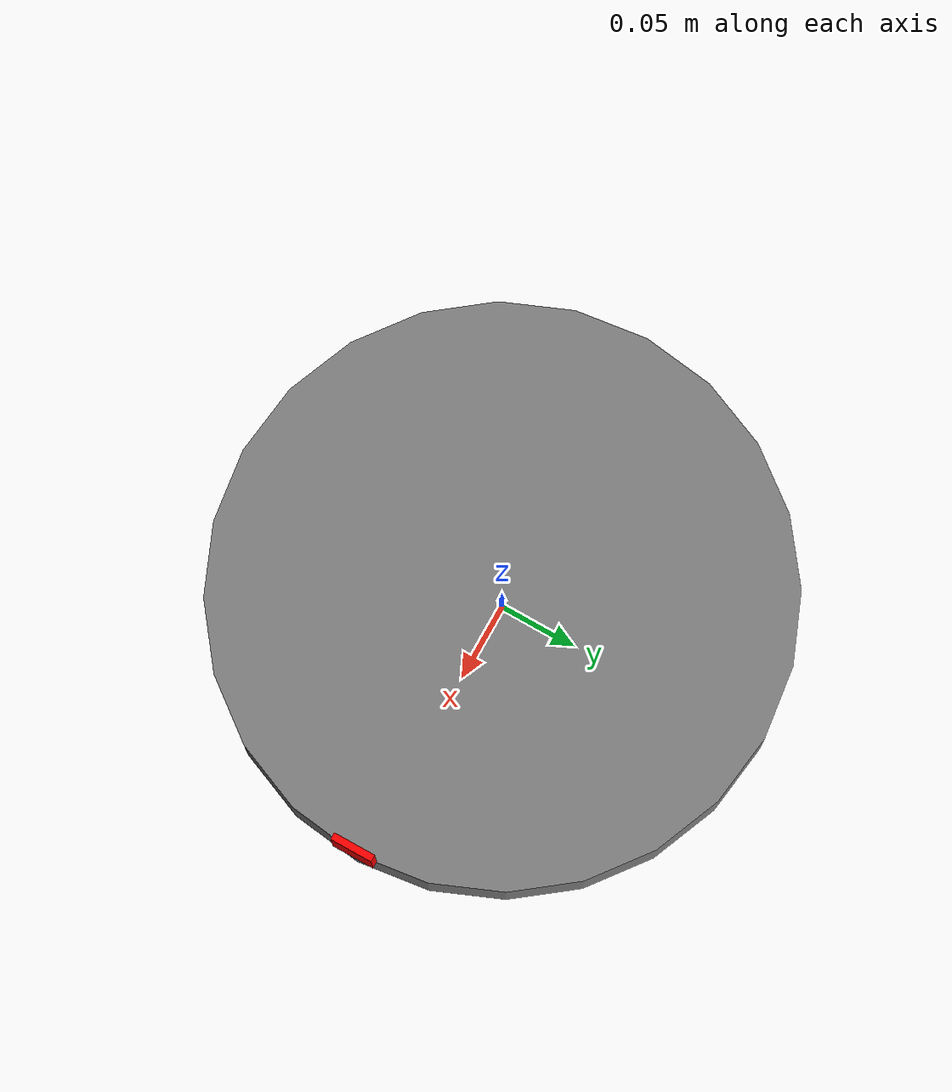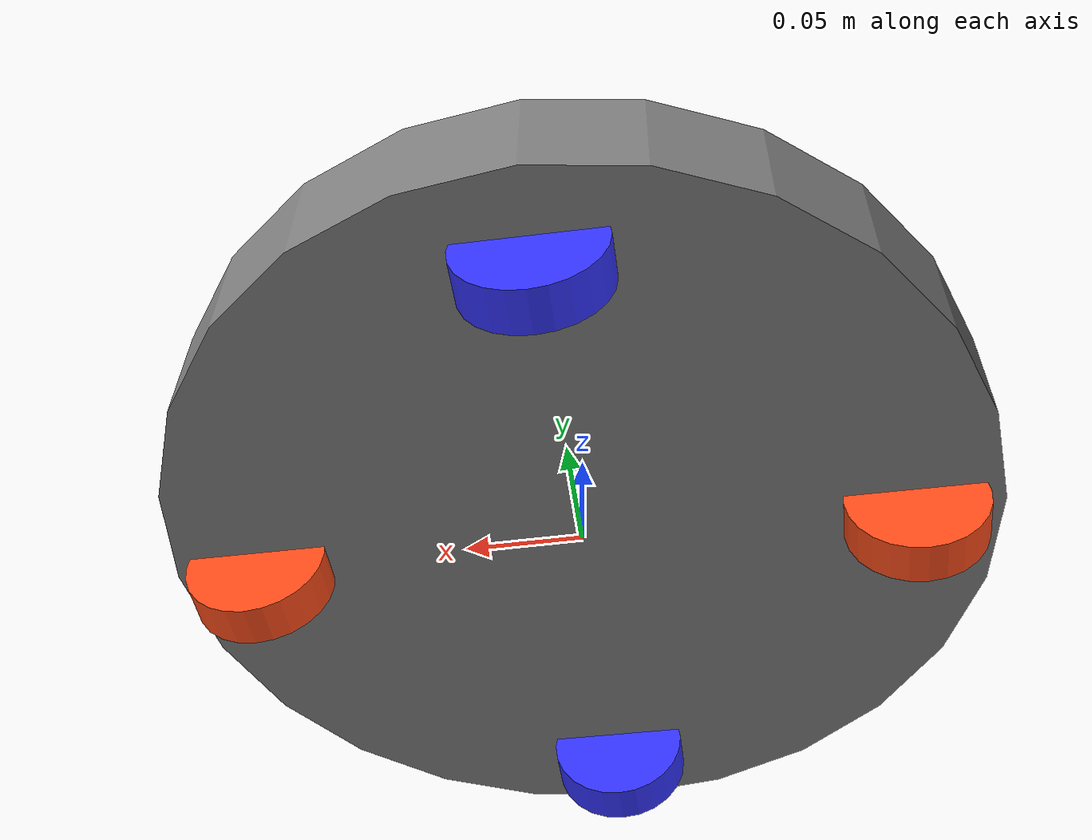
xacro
<?xml version="1.0"?>
<robot xmlns:xacro="http://www.ros.org/wiki/xacro"  name="robot">
    <xacro:arg name="use_ros2_control" default="true"/>
    <xacro:arg name="sim_mode" default="false"/>

    <xacro:include filename="robot_core.xacro"/>

    <xacro:if value="$(arg use_ros2_control)">
        <xacro:include filename="ros2_control.xacro"/>
    </xacro:if>
    <xacro:unless value="$(arg use_ros2_control)">
        <xacro:include filename="gazebo_control.xacro"/>
    </xacro:unless>

    <xacro:include filename="camera.xacro"/>

</robot>

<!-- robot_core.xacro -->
<robot xmlns:xacro="http://www.ros.org/wiki/xacro" name="roomba_core"> <!-- Robot core: for Joints/links -->
<xacro:include filename="inertial_macros.xacro"/>
<xacro:include filename="properties.xacro"/>

    <!-- Define reusable materials -->
    <material name="white">
        <color rgba="1 1 1 1" />
    </material>

    <material name="orange">
        <color rgba="1 0.3 0.1 1"/>
    </material>

    <material name="blue">
        <color rgba="0.2 0.2 1 1"/>
    </material>

    <material name="black">
        <color rgba="0 0 0 1"/>
    </material>

    <material name="grey">
      <color rgba="0.5 0.5 0.5 1"/>
    </material>

    <material name="transparent">
      <color rgba="0 0 0 0"/>
    </material>

    <material name="red">
      <color rgba="1 0 0 1"/>
    </material>

  <!--=== PROPERTIES ===-->
  <!-- All dimensions in meters -->

  <!--=== BASE LINK (CHASSIS AS A CYLINDER) ===-->
  <link name="base_link">
    <visual>
      <origin xyz="0 0 ${chassis_thick/2}" rpy="0 0 0"/>
      <geometry>
        <cylinder radius="${chassis_radius}" length="${chassis_thick}"/>
      </geometry>
      <material name="grey"/>
    </visual>
    <!-- In gazebo/simulation environment, it should bump/respond in realism terms -->
    <collision>
      <origin xyz="0 0 ${chassis_thick/2}" rpy="0 0 0"/>
      <geometry>
        <cylinder radius="${chassis_radius}" length="${chassis_thick}"/>
      </geometry>
    </collision>
    <!-- mass: 3 -->
    <xacro:inertial_cylinder mass="3.0"
                             length="${chassis_thick}"
                             radius="${chassis_radius}">
      <origin xyz="0 0 ${chassis_thick/2}" rpy="0 0 0"/>
    </xacro:inertial_cylinder>

  </link>
  <gazebo reference="base_link">
    <material>Gazebo/Grey</material>
    <gravity>false</gravity>
  </gazebo>

  <joint name="base_footprint_joint" type="fixed">
        <parent link="base_link"/>
        <child link="base_footprint"/>
        <origin xyz="0 0 0" rpy="0 0 0"/>
    </joint>

  <link name="base_footprint">
  </link>

  <!--=== LEFT WHEEL ===-->
  <!-- base_link then left_wheel_joint then left_wheel -->
  <!-- This deals with position ONLY, relative to parent (need both joint/link to define position of rigid body) -->
  <joint name="left_wheel_joint" type="continuous">
    <parent link="base_link"/>
    <child link="left_wheel"/>
    <!-- lift wheel by its radius, rotate 90° (this is in radians, and 1.57 radians ~ 90deg or pi/2) around Y to align cylinder axis -->
    <origin xyz="${-max_wheel_movement_down} ${wheel_y_offset} ${wheel_z}" rpy="1.5708 0 0"/>
    <axis   xyz="0 0 1"/>
  </joint>
  <!-- Physical rigid body -->
  <link name="left_wheel">
    <visual>
      <geometry>
        <cylinder radius="${wheel_radius}" length="${wheel_width}"/>
      </geometry>
      <material name="blue"/>
    </visual>
    <collision>
      <origin xyz="0 0 ${wheel_z}" rpy="1.5708 0 0"/>
      <geometry>
        <sphere radius="${wheel_radius}"/>
      </geometry>
    </collision>
    <xacro:inertial_cylinder mass="0.15"
                             length="${wheel_width}"
                             radius="${wheel_radius}">
      <origin rpy="1.5708 0 0"/>
    </xacro:inertial_cylinder>

  </link>

  <gazebo reference="left_wheel">
    <material>Gazebo/Blue</material>
  </gazebo>

  <!--=== RIGHT WHEEL ===-->
  <joint name="right_wheel_joint" type="continuous">
    <parent link="base_link"/>
    <child link="right_wheel"/>
    <origin xyz="${-max_wheel_movement_down} -${wheel_y_offset} ${wheel_z}" rpy="1.5708 0 0"/>
    <axis   xyz="0 0 1"/>
  </joint>
  <link name="right_wheel">
    <visual>
      <geometry>
        <cylinder radius="${wheel_radius}" length="${wheel_width}"/>
      </geometry>
      <material name="blue"/>
    </visual>
    <collision>
      <origin xyz="0 0 ${wheel_z}" rpy="1.5708 0 0"/>
      <geometry>
        <sphere radius="${wheel_radius}"/>
      </geometry>
    </collision>
    <xacro:inertial_cylinder mass="0.15"
                             length="${wheel_width}"
                             radius="${wheel_radius}">
      <origin rpy="1.5708 0 0"/>
    </xacro:inertial_cylinder>

  </link>

  <gazebo reference="right_wheel">
    <material>Gazebo/Blue</material>
  </gazebo>

  <joint name="right_wheel_joint_front" type="fixed">
    <parent link="base_link"/>
    <child link="right_wheel_front"/>
    <origin xyz="${wheel_y_offset} 0 ${wheel_z}" rpy="1.5708 0 0"/>
    <axis   xyz="0 0 1"/>
  </joint>
  <link name="right_wheel_front">
    <visual>
      <geometry>
        <cylinder radius="${wheel_radius}" length="${wheel_width}"/>
      </geometry>
      <material name="orange"/>
    </visual>
    <collision>
      <origin xyz="${wheel_y_offset} 0 ${wheel_z}" rpy="1.5708 0 0"/>
      <geometry>
        <sphere radius="${wheel_radius}"/>
      </geometry>
    </collision>
    <xacro:inertial_cylinder mass="0.15"
                             length="${wheel_width}"
                             radius="${wheel_radius}">
      <origin rpy="1.5708 0 0"/>
    </xacro:inertial_cylinder>

  </link>

  <gazebo reference="right_wheel_front">
    <material>Gazebo/TransparentOrange</material>
    <mu1 value="0.001"/>
    <mu2 value="0.001"/>
  </gazebo>

  <joint name="left_wheel_joint_front" type="fixed">
    <parent link="base_link"/>
    <child link="left_wheel_front"/>
    <origin xyz="${-wheel_y_offset} 0 ${wheel_z}" rpy="1.5708 0 0"/>
    <axis   xyz="0 0 1"/>
  </joint>
  <link name="left_wheel_front">
    <visual>
      <geometry>
        <cylinder radius="${wheel_radius}" length="${wheel_width}"/>
      </geometry>
      <material name="orange"/>
    </visual>
    <collision>
      <origin xyz="${-wheel_y_offset} 0 ${wheel_z}" rpy="1.5708 0 0"/>
      <geometry>
        <sphere radius="${wheel_radius}"/>
      </geometry>
    </collision>
    <xacro:inertial_cylinder mass="0.15"
                             length="${wheel_width}"
                             radius="${wheel_radius}">
      <origin rpy="1.5708 0 0"/>
    </xacro:inertial_cylinder>

  </link>

  <gazebo reference="left_wheel_front">
    <material>Gazebo/TransparentOrange</material>
    <mu1 value="0.001"/>
    <mu2 value="0.001"/>
  </gazebo>

  <!--=== CASTER WHEEL ===-->

</robot>

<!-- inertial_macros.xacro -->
<robot xmlns:xacro="http://www.ros.org/wiki/xacro" >

    <!-- Specify some standard inertial calculations https://en.wikipedia.org/wiki/List_of_moments_of_inertia -->
    <!-- These make use of xacro's mathematical functionality -->
    <!-- xacro:macro is like a function, params mass radius and *origin lets you nest an origin tag inside of the macro -->
    <xacro:macro name="inertial_sphere" params="mass radius *origin">
        <inertial>
            <!-- Expands what was passed in origin -->
            <xacro:insert_block name="origin"/>
            <!-- Moment of inertia about its center -->
            <mass value="${mass}" />
            <inertia ixx="${(2/5) * mass * (radius*radius)}" ixy="0.0" ixz="0.0"
                    iyy="${(2/5) * mass * (radius*radius)}" iyz="0.0"
                    izz="${(2/5) * mass * (radius*radius)}" />
        </inertial>
    </xacro:macro>

    <xacro:macro name="inertial_box" params="mass x y z *origin">
        <inertial>
            <xacro:insert_block name="origin"/>
            <mass value="${mass}" />
            <inertia ixx="${(1/12) * mass * (y*y+z*z)}" ixy="0.0" ixz="0.0"
                    iyy="${(1/12) * mass * (x*x+z*z)}" iyz="0.0"
                    izz="${(1/12) * mass * (x*x+y*y)}" />
        </inertial>
    </xacro:macro>

    <xacro:macro name="inertial_cylinder" params="mass length radius *origin">
        <inertial>
            <xacro:insert_block name="origin"/>
            <mass value="${mass}" />
            <inertia ixx="${(1/12) * mass * (3*radius*radius + length*length)}" ixy="0.0" ixz="0.0"
                    iyy="${(1/12) * mass * (3*radius*radius + length*length)}" iyz="0.0"
                    izz="${(1/2) * mass * (radius*radius)}" />
        </inertial>
    </xacro:macro>

</robot>

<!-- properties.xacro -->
<robot xmlns:xacro="http://www.ros.org/wiki/xacro">

    <xacro:property name="chassis_radius"   value="0.1778"/>   <!-- 7 in = 0.1778 m -->
    <xacro:property name="chassis_thick"    value="0.05"/>     <!-- chassis height -->
    <xacro:property name="wheel_radius"     value="0.0301625"/>    <!-- ~70 mm dia. 0.035 meters -->
    <xacro:property name="wheel_width"      value="0.01905"/>
    <xacro:property name="wheel_y_offset"   value="0.14"/>     <!-- offset from center  0.16-->
    <xacro:property name="caster_radius"    value="0.02"/>
    <xacro:property name="max_wheel_movement_down" value="0"/>
    <xacro:property name="caster_x_offset"  value="0.15"/>
    <xacro:property name="wheel_z" value="${(wheel_radius - (chassis_thick/2))-0.01}"/>
    <xacro:property name="cam_length"   value="0.0405"/>
    <xacro:property name="cam_width"   value="0.027"/>
    <xacro:property name="cam_height"   value="0.0045"/>
    <xacro:property name="ninety_deg"   value="1.5708"/>

</robot>

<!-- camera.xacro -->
<robot xmlns:xacro="http://www.ros.org/wiki/xacro"  name="robot">
    <joint name="camera_joint" type='fixed'>
        <parent link="base_link"/>
        <child link="camera_link"/>
        <origin xyz="${chassis_radius} 0 ${chassis_thick+(chassis_thick/2.5)}" rpy="0 0 0" />
    </joint>
    <link name="camera_link">
        <visual>
            <geometry>
            <!-- ${wheel_width/2} ${wheel_radius} ${wheel_radius} -->
                <box size="${cam_height} ${cam_width} ${cam_length}"/>
            </geometry>
            <material name="red"/>
        </visual>
        <!-- Camera sticks out, could easily get hit -->
        <collision>
            <origin xyz="0 0 ${wheel_z}" rpy="0 ${ninety_deg} 0"/>
            <geometry>
                <box size="${cam_height} ${cam_width} ${cam_length}"/>
            </geometry>
        </collision>
        <!-- Camera IS on a fixed joint, no need for inertia -->
    </link>

    <joint name="camera_optical_joint" type='fixed'>
        <parent link="camera_link"/>
        <child link="camera_link_optical"/>
        <origin xyz="0 0 0" rpy="${-pi/2} 0 ${-pi/2}" />
    </joint>

    <link name="camera_link_optical"></link>

    <gazebo reference="camera_link">
        <material>Gazebo/Red</material>

        <sensor name="camera" type="camera">
            <pose> 0 0 0 0 0 0 </pose>
            <visualize>true</visualize>
            <update_rate>10</update_rate>
            <camera>
                <horizontal_fov>0.94</horizontal_fov>
                <image>
                    <format>R8G8B8</format>
                    <width>640</width>
                    <height>480</height>
                </image>
                <clip>
                    <!-- As close as 50mm, or 0.05 -->
                    <near>0.05</near>
                    <!-- As far as 8m, or 8.0 -->
                    <far>8.0</far>
                </clip>
            </camera>
            <plugin name="camera_controller" filename="libgazebo_ros_camera.so">
                <frame_name>camera_link_optical</frame_name>
            </plugin>
        </sensor>
    </gazebo>

</robot>
